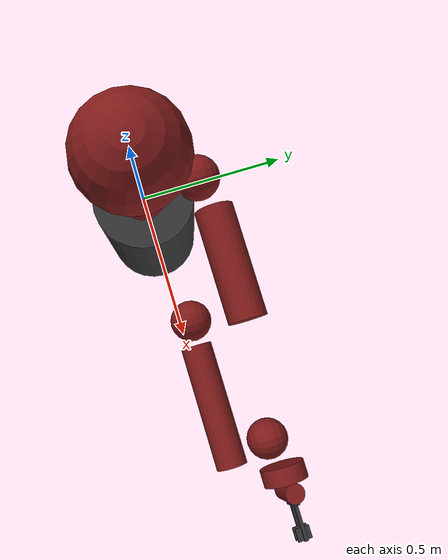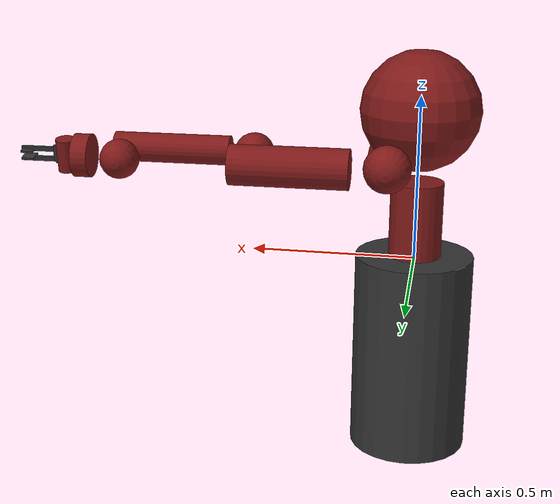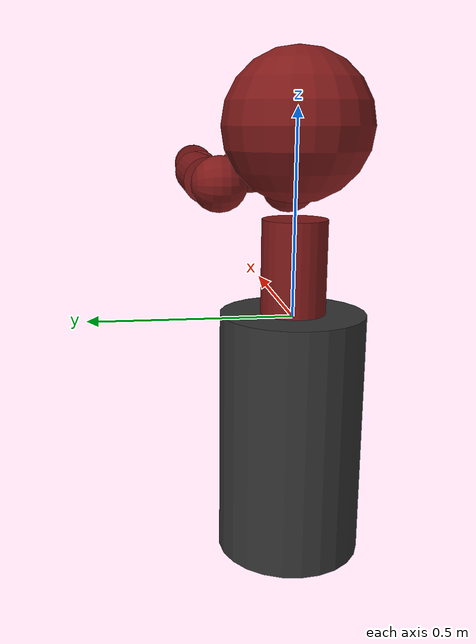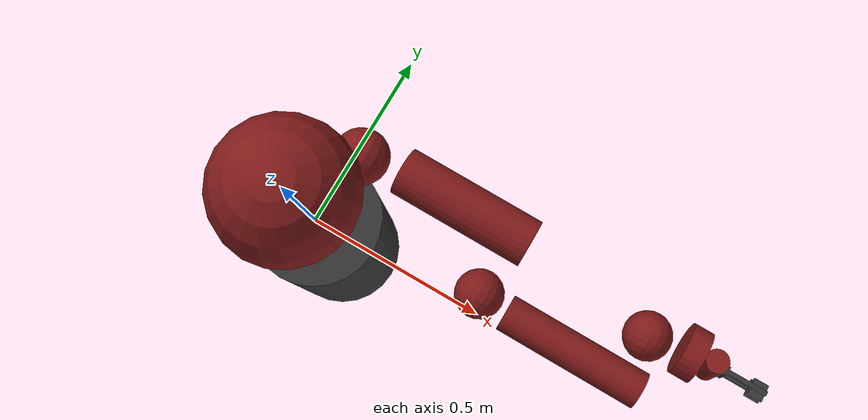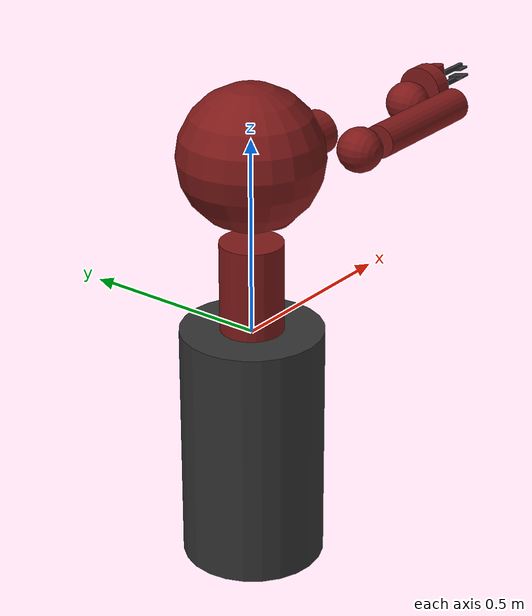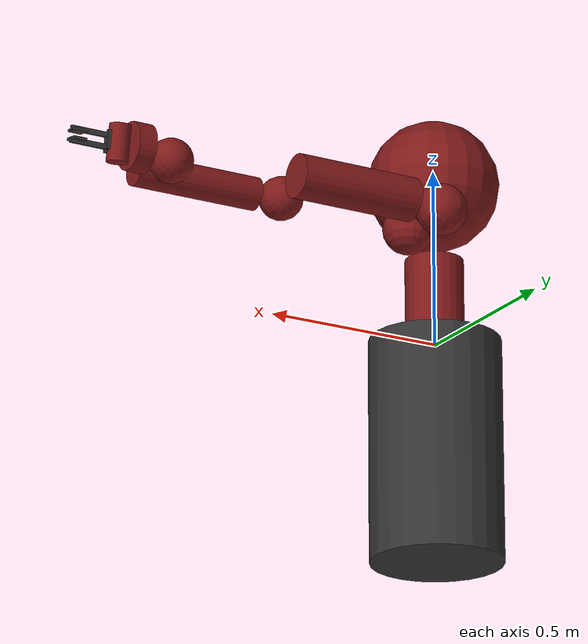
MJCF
<mujoco model="sawyer">
    <compiler angle="radian" />
    <size njmax="500" nconmax="100" />
    <worldbody>
        <geom size="0.18 0.31" pos="0 0 -0.3" type="cylinder" rgba="0.2 0.2 0.2 1" />
        <geom size="0.08 0.12" pos="0 0 0.12" type="cylinder" rgba="0.5 0.1 0.1 1" />
        <body name="right_l0" pos="0 0 0.08">
            <inertial pos="0.0243645 0.0109688 0.143631" quat="0.894821 0.0089945 -0.17028 0.412576" mass="5.3214" diaginertia="0.0651599 0.0510954 0.0186221" />
            <joint name="right_j0" pos="0 0 0" axis="0 0 1" limited="true" range="-3.0503 3.0503" />
            <geom size="0.07" pos="0.081 0 0.237" rgba="0.5 0.1 0.1 1" />
            <body name="head" pos="0 0 0.2965">
                <inertial pos="0.00532337 -2.65456e-05 0.102107" quat="0.999993 7.07353e-05 -0.00358293 -0.000626283" mass="1.5797" diaginertia="0.0118347 0.00827232 0.00496586" />
                <joint name="head_pan" pos="0 0 0" axis="0 0 1" limited="true" range="-5.1477 0.9559" />
                <geom size="0.18" pos="0 0 0.08" rgba="0.5 0.1 0.1 1" />
                <geom size="0.001" pos="0.03 0 0.105" quat="0.499998 0.5 0.500002 0.5" rgba="0.2 0.2 0.2 1" />
            </body>
            <body name="right_l1" pos="0.081 0.05 0.237" quat="0.499998 -0.5 0.5 0.500002">
                <inertial pos="-0.0030849 -0.026811 0.092521" quat="0.424888 0.891987 0.132364 -0.0794296" mass="4.505" diaginertia="0.0224339 0.0221624 0.0097097" />
                <joint name="right_j1" pos="0 0 0" axis="0 0 1" limited="true" range="-3.8183 2.2824" />
                <geom size="0.07" pos="0 0 0.1225" rgba="0.5 0.1 0.1 1" />
                <body name="right_l2" pos="0 -0.14 0.1425" quat="0.707105 0.707108 0 0">
                    <inertial pos="-0.00016232 -0.015346 0.13445" quat="0.707249 -0.0541564 0.0533441 0.702866" mass="1.7251" diaginertia="0.0255023 0.025176 0.00285946" />
                    <joint name="right_j2" pos="0 0 0" axis="0 0 1" limited="true" range="-3.0514 3.0514" />
                    <geom size="0.06 0.175" pos="0 0 0.14" type="cylinder" rgba="0.5 0.1 0.1 1" />
                    <body name="right_l3" pos="0 -0.042 0.26" quat="0.707105 -0.707108 0 0">
                        <inertial pos="-0.0046678 -0.028394 -0.083127" quat="0.894367 0.380888 -0.106513 0.209016" mass="2.4743" diaginertia="0.0100572 0.00959393 0.00350313" />
                        <joint name="right_j3" pos="0 0 0" axis="0 0 1" limited="true" range="-3.0514 3.0514" />
                        <geom size="0.06" pos="0 -0.01 -0.12" rgba="0.5 0.1 0.1 1" />
                        <body name="right_l4" pos="0 -0.125 -0.1265" quat="0.707105 0.707108 0 0">
                            <inertial pos="-0.0027844 0.00765507 0.132724" quat="0.801021 0.0333246 -0.0340207 0.596739" mass="1.0434" diaginertia="0.0130575 0.0129033 0.00113288" />
                            <joint name="right_j4" pos="0 0 0" axis="0 0 1" limited="true" range="-2.9842 2.9842" />
                            <geom size="0.045 0.18" pos="0 0 0.14" type="cylinder" rgba="0.5 0.1 0.1 1" />
                            <body name="right_l5" pos="0 0.031 0.275" quat="0.707105 -0.707108 0 0">
                                <inertial pos="0.00620847 -0.02429 0.0755655" quat="0.405453 0.912624 0.0521875 0.000998978" mass="1.5345" diaginertia="0.00461681 0.00417719 0.00178731" />
                                <joint name="right_j5" pos="0 0 0" axis="0 0 1" limited="true" range="-2.9842 2.9842" />
                                <geom size="0.06" pos="0.01 0 0.09" rgba="0.5 0.1 0.1 1" />
                                <body name="right_l6" pos="0 -0.11 0.1053" quat="0.0616249 0.0616299 -0.704417 0.704415">
                                    <inertial pos="-4.22295e-06 0.00449037 0.0210337" quat="0.995113 0.0984675 0.000114172 0.00733621" mass="0.6293" diaginertia="0.000790748 0.000696567 0.000358388" />
                                    <joint name="right_j6" pos="0 0 0" axis="0 0 1" limited="true" range="-4.7104 4.7104" />
                                    <geom size="0.065 0.025" pos="0 0 -0.005" type="cylinder" rgba="0.5 0.1 0.1 1" />
                                    <geom size="0.029 0.05" pos="0 0 0.0495" quat="-0.500001 -0.500001 0.499999 0.499999" type="cylinder" rgba="0.5 0.1 0.1 1" />
                                    <body name="r_gripper_l_finger" pos="0.0015 5.50981e-09 0.0695" quat="0.707105 0 0 0.707108">
                                        <inertial pos="0 0.00575 0.0375667" quat="0.997118 -0.0758683 0 0" mass="0.03" diaginertia="0.0200867 0.0200867 0.02" />
                                        <joint name="r_gripper_l_finger_joint" pos="0 0 0" axis="0 1 0" type="slide" limited="true" range="0 0.020833" damping="0.7" />
                                        <geom size="0.005 0.00675 0.05635" pos="0 0.01725 0.0615" quat="0 0 0 -1" type="box" rgba="0.2 0.2 0.2 1" />
                                        <geom size="0.005 0.025 0.0085" pos="-0.005 -0.003 0.0083" quat="0 0 0 -1" type="box" rgba="0.2 0.2 0.2 1" />
                                        <geom size="0.021 0.00325 0.0185" pos="0 0.01275 0.0977" quat="0 0 0 1" type="box" rgba="0.2 0.2 0.2 1" />
                                    </body>
                                    <body name="r_gripper_r_finger" pos="-0.0015 -5.50981e-09 0.0695" quat="0.707105 0 0 0.707108">
                                        <inertial pos="0 -0.00575 0.0375667" quat="0.997118 0.0758683 0 0" mass="0.03" diaginertia="0.0200867 0.0200867 0.02" />
                                        <joint name="r_gripper_r_finger_joint" pos="0 0 0" axis="0 1 0" type="slide" limited="true" range="-0.020833 0" damping="0.7" />
                                        <geom size="0.005 0.00675 0.05635" pos="0 -0.01725 0.0615" type="box" rgba="0.2 0.2 0.2 1" />
                                        <geom size="0.005 0.025 0.0085" pos="0.005 0.003 0.0083" type="box" rgba="0.2 0.2 0.2 1" />
                                        <geom size="0.021 0.00325 0.0185" pos="0 -0.01275 0.0977" type="box" rgba="0.2 0.2 0.2 1" />
                                    </body>
                                </body>
                            </body>
                        </body>
                    </body>
                </body>
            </body>
        </body>
    </worldbody>
</mujoco>
